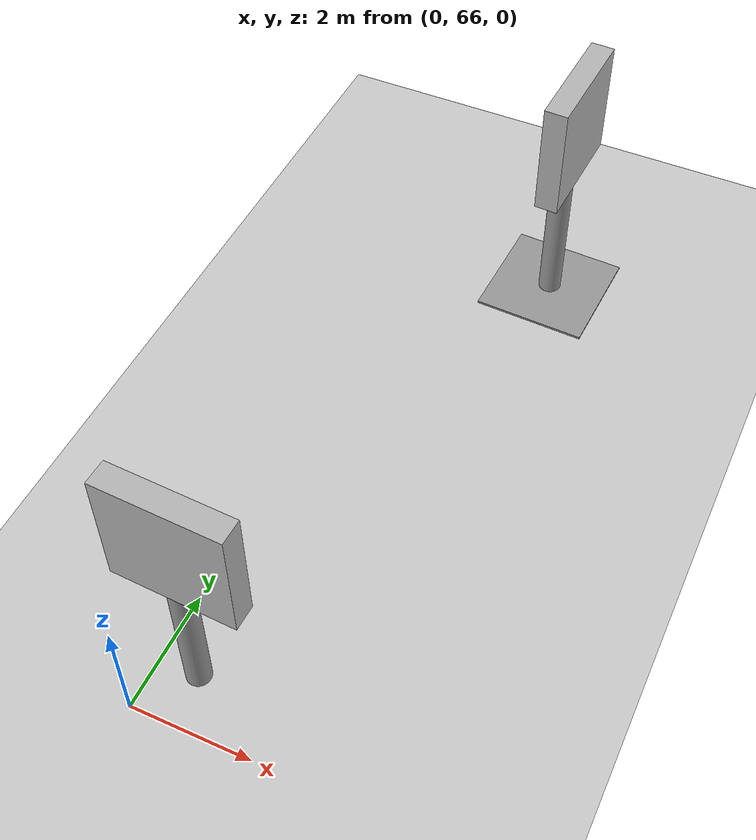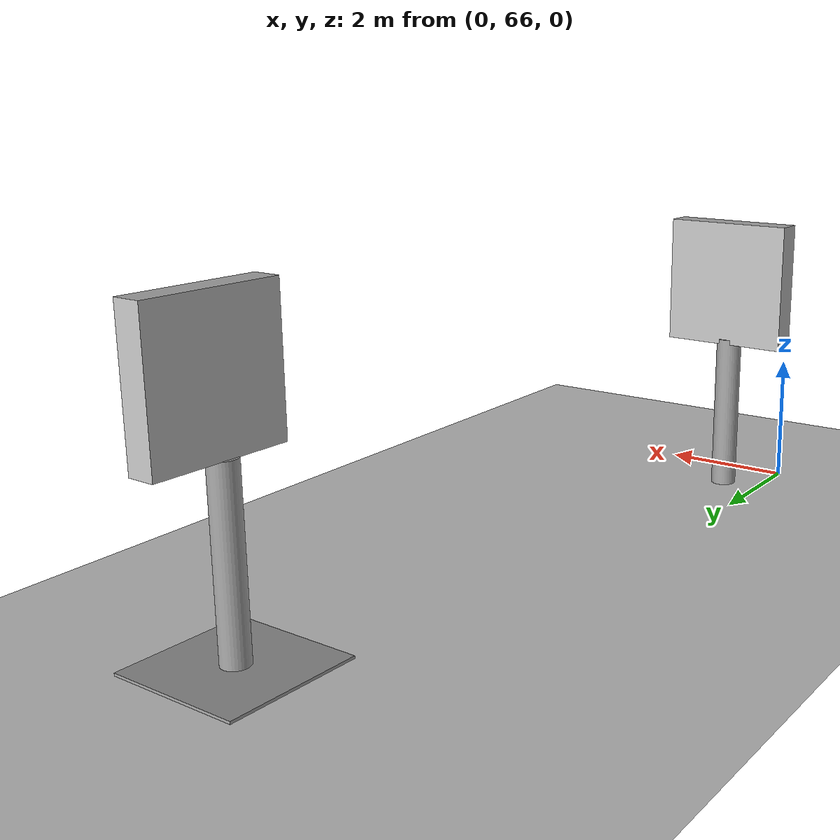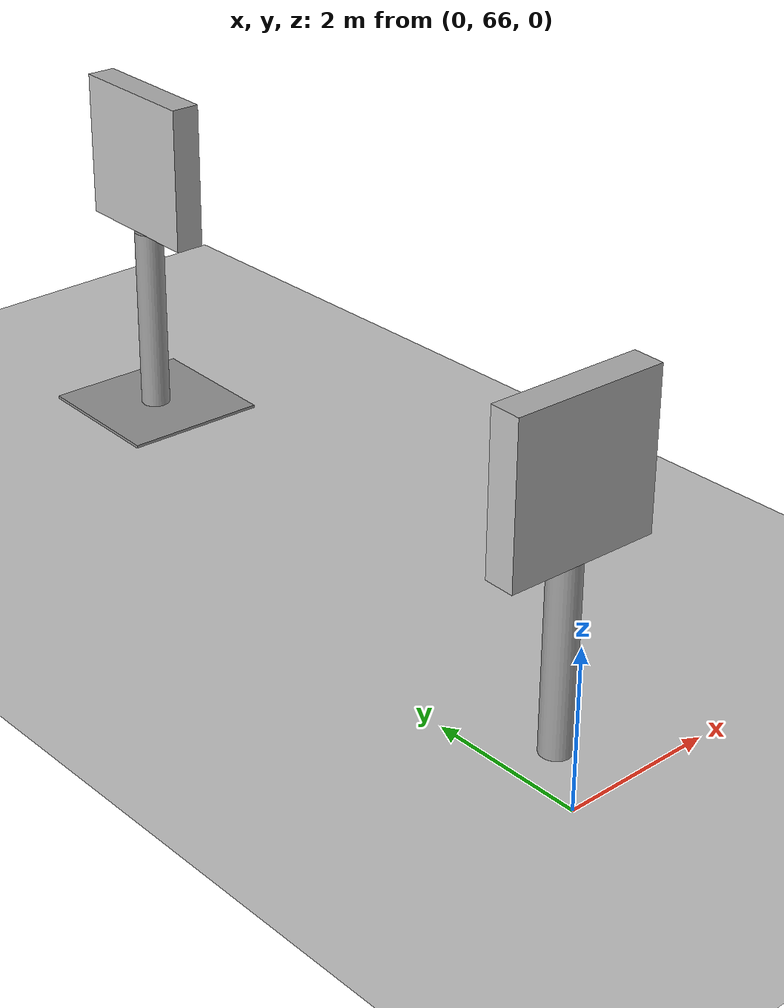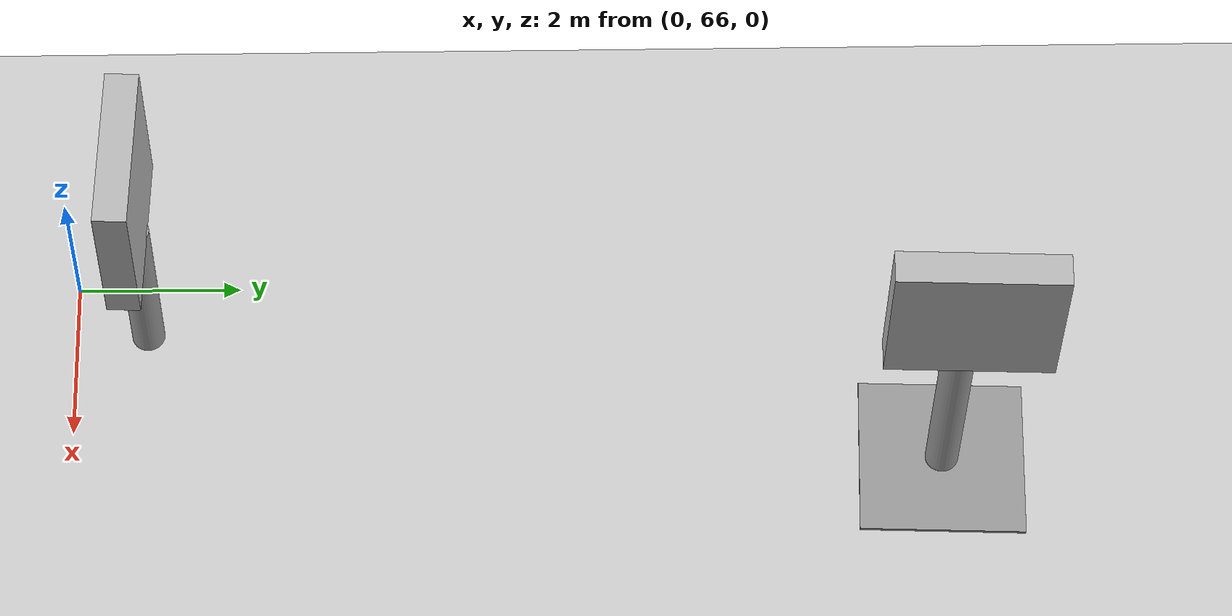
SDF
<sdf version="1.7">
 <world name="default">
  <model name="ground_plane">
   <static>1</static>
   <link name="link">
    <collision name="collision">
     <geometry><plane><normal>0 0 1</normal><size>100 100</size></plane></geometry>
     <surface><friction><ode><mu>100</mu><mu2>50</mu2></ode></friction></surface>
    </collision>
    <visual name="visual">
     <cast_shadows>0</cast_shadows>
     <geometry><plane><normal>0 0 1</normal><size>100 100</size></plane></geometry>
     <material>
      <script><uri>file://media/materials/scripts/gazebo.material</uri><name>Gazebo/Grey</name></script>
     </material>
    </visual>
   </link>
  </model>
  <model name="model_turn">
   <link name="link_0">
    <inertial>
     <mass>1</mass>
     <inertia>
      <ixx>0.166667</ixx>
      <ixy>0</ixy>
      <ixz>0</ixz>
      <iyy>0.166667</iyy>
      <iyz>0</iyz>
      <izz>0.166667</izz>
     </inertia>
    </inertial>
    <pose>-0.013991 -0.018474 -1.8118 0 -0 0</pose>
    <visual name="visual">
     <geometry>
      <mesh>
       <uri>/root/autonomous_ws/src/self_driving_car_pkg/models/sign_board_turn/meshes/sign_stand.dae</uri>
       <scale>1 1 1</scale>
      </mesh>
     </geometry>
     <material>
      <lighting>1</lighting>
      <script><uri>file://media/materials/scripts/gazebo.material</uri><name>Gazebo/Grey</name></script>
      <shader type="pixel"/>
      <emissive>0 0 0 1</emissive>
     </material>
    </visual>
    <collision name="collision">
     <geometry>
      <mesh>
       <uri>/root/autonomous_ws/src/self_driving_car_pkg/models/sign_board_turn/meshes/sign_stand.dae</uri>
       <scale>1 1 1</scale>
      </mesh>
     </geometry>
     <surface>
      <friction>
       <ode><mu>1</mu><mu2>1</mu2><fdir1>0 0 0</fdir1><slip1>0</slip1><slip2>0</slip2></ode>
       <torsional>
        <coefficient>1</coefficient>
        <patch_radius>0</patch_radius>
        <surface_radius>0</surface_radius>
        <use_patch_radius>1</use_patch_radius>
        <ode><slip>0</slip></ode>
       </torsional>
      </friction>
      <bounce><restitution_coefficient>0</restitution_coefficient><threshold>1e+06</threshold></bounce>
      <contact>
       <collide_without_contact>0</collide_without_contact>
       <collide_without_contact_bitmask>1</collide_without_contact_bitmask>
       <collide_bitmask>1</collide_bitmask>
       <ode>
        <soft_cfm>0</soft_cfm>
        <soft_erp>0.2</soft_erp>
        <kp>1e+13</kp>
        <kd>1</kd>
        <max_vel>0.01</max_vel>
        <min_depth>0</min_depth>
       </ode>
       <bullet>
        <split_impulse>1</split_impulse>
        <split_impulse_penetration_threshold>-0.01</split_impulse_penetration_threshold>
        <soft_cfm>0</soft_cfm>
        <soft_erp>0.2</soft_erp>
        <kp>1e+13</kp>
        <kd>1</kd>
       </bullet>
      </contact>
     </surface>
    </collision>
   </link>
   <link name="link_1">
    <inertial>
     <mass>1</mass>
     <inertia>
      <ixx>0.166667</ixx>
      <ixy>0</ixy>
      <ixz>0</ixz>
      <iyy>0.166667</iyy>
      <iyz>0</iyz>
      <izz>0.166667</izz>
     </inertia>
    </inertial>
    <pose>0.013991 0.018473 1.8118 0 -0 0</pose>
    <visual name="visual">
     <geometry>
      <mesh>
       <uri>/root/autonomous_ws/src/self_driving_car_pkg/models/sign_board_turn/meshes/sign_board_turn.dae</uri>
       <scale>1 1 1</scale>
      </mesh>
     </geometry>
     <material>
      <lighting>1</lighting>
      <script>
       <uri>/root/autonomous_ws/src/self_driving_car_pkg/models/sign_board_turn/materials/scripts</uri>
       <uri>/root/autonomous_ws/src/self_driving_car_pkg/models/sign_board_turn/materials/textures</uri>
       <name>model_turn/Diffuse</name>
      </script>
      <shader type="pixel"/>
      <emissive>0 0 0 1</emissive>
     </material>
    </visual>
    <collision name="collision">
     <geometry>
      <mesh>
       <uri>/root/autonomous_ws/src/self_driving_car_pkg/models/sign_board_turn/meshes/sign_board_turn.dae</uri>
       <scale>1 1 1</scale>
      </mesh>
     </geometry>
     <surface>
      <friction>
       <ode><mu>1</mu><mu2>1</mu2><fdir1>0 0 0</fdir1><slip1>0</slip1><slip2>0</slip2></ode>
       <torsional>
        <coefficient>1</coefficient>
        <patch_radius>0</patch_radius>
        <surface_radius>0</surface_radius>
        <use_patch_radius>1</use_patch_radius>
        <ode><slip>0</slip></ode>
       </torsional>
      </friction>
      <bounce><restitution_coefficient>0</restitution_coefficient><threshold>1e+06</threshold></bounce>
      <contact>
       <collide_without_contact>0</collide_without_contact>
       <collide_without_contact_bitmask>1</collide_without_contact_bitmask>
       <collide_bitmask>1</collide_bitmask>
       <ode>
        <soft_cfm>0</soft_cfm>
        <soft_erp>0.2</soft_erp>
        <kp>1e+13</kp>
        <kd>1</kd>
        <max_vel>0.01</max_vel>
        <min_depth>0</min_depth>
       </ode>
       <bullet>
        <split_impulse>1</split_impulse>
        <split_impulse_penetration_threshold>-0.01</split_impulse_penetration_threshold>
        <soft_cfm>0</soft_cfm>
        <soft_erp>0.2</soft_erp>
        <kp>1e+13</kp>
        <kd>1</kd>
       </bullet>
      </contact>
     </surface>
    </collision>
   </link>
   <joint name="link_0_JOINT_0" type="fixed">
    <parent>link_0</parent>
    <child>link_1</child>
    <physics>
     <ode><limit><cfm>0</cfm><erp>0.2</erp></limit><suspension><cfm>0</cfm><erp>0.2</erp></suspension></ode>
    </physics>
   </joint>
   <static>1</static>
   <pose>0.659705 66.8587 1.61206 0 0 -1.60803</pose>
  </model>
  <model name="model_stop">
   <link name="link_0">
    <inertial>
     <mass>1</mass>
     <inertia>
      <ixx>0.166667</ixx>
      <ixy>0</ixy>
      <ixz>0</ixz>
      <iyy>0.166667</iyy>
      <iyz>0</iyz>
      <izz>0.166667</izz>
     </inertia>
    </inertial>
    <pose>-0.029569 -0.053796 -1.84817 0 -0 0</pose>
    <visual name="visual">
     <geometry>
      <mesh>
       <uri>/root/autonomous_ws/src/self_driving_car_pkg/models/sign_board_stop/meshes/sign_stand.dae</uri>
       <scale>1 1 1</scale>
      </mesh>
     </geometry>
     <material>
      <lighting>1</lighting>
      <script><uri>file://media/materials/scripts/gazebo.material</uri><name>Gazebo/Grey</name></script>
      <shader type="pixel"/>
      <emissive>0 0 0 1</emissive>
     </material>
    </visual>
    <collision name="collision">
     <geometry>
      <mesh>
       <uri>/root/autonomous_ws/src/self_driving_car_pkg/models/sign_board_stop/meshes/sign_stand.dae</uri>
       <scale>1 1 1</scale>
      </mesh>
     </geometry>
     <surface>
      <friction>
       <ode><mu>1</mu><mu2>1</mu2><fdir1>0 0 0</fdir1><slip1>0</slip1><slip2>0</slip2></ode>
       <torsional>
        <coefficient>1</coefficient>
        <patch_radius>0</patch_radius>
        <surface_radius>0</surface_radius>
        <use_patch_radius>1</use_patch_radius>
        <ode><slip>0</slip></ode>
       </torsional>
      </friction>
      <bounce><restitution_coefficient>0</restitution_coefficient><threshold>1e+06</threshold></bounce>
      <contact>
       <collide_without_contact>0</collide_without_contact>
       <collide_without_contact_bitmask>1</collide_without_contact_bitmask>
       <collide_bitmask>1</collide_bitmask>
       <ode>
        <soft_cfm>0</soft_cfm>
        <soft_erp>0.2</soft_erp>
        <kp>1e+13</kp>
        <kd>1</kd>
        <max_vel>0.01</max_vel>
        <min_depth>0</min_depth>
       </ode>
       <bullet>
        <split_impulse>1</split_impulse>
        <split_impulse_penetration_threshold>-0.01</split_impulse_penetration_threshold>
        <soft_cfm>0</soft_cfm>
        <soft_erp>0.2</soft_erp>
        <kp>1e+13</kp>
        <kd>1</kd>
       </bullet>
      </contact>
     </surface>
    </collision>
   </link>
   <link name="link_1">
    <inertial>
     <mass>1</mass>
     <inertia>
      <ixx>0.166667</ixx>
      <ixy>0</ixy>
      <ixz>0</ixz>
      <iyy>0.166667</iyy>
      <iyz>0</iyz>
      <izz>0.166667</izz>
     </inertia>
    </inertial>
    <pose>0.02957 0.053796 1.84817 0 -0 0</pose>
    <visual name="visual">
     <geometry>
      <mesh>
       <uri>/root/autonomous_ws/src/self_driving_car_pkg/models/sign_board_stop/meshes/sign_board_stop.dae</uri>
       <scale>1 1 1</scale>
      </mesh>
     </geometry>
     <material>
      <lighting>1</lighting>
      <script>
       <uri>src/self_driving_car_pkg/models/sign_board_stop/materials/scripts</uri>
       <uri>src/self_driving_car_pkg/models/sign_board_stop/materials/textures</uri>
       <name>model_stop/Diffuse</name>
      </script>
      <shader type="pixel"/>
      <emissive>0 0 0 1</emissive>
     </material>
    </visual>
    <collision name="collision">
     <geometry>
      <mesh>
       <uri>/root/autonomous_ws/src/self_driving_car_pkg/models/sign_board_stop/meshes/sign_board_stop.dae</uri>
       <scale>1 1 1</scale>
      </mesh>
     </geometry>
     <surface>
      <friction>
       <ode><mu>1</mu><mu2>1</mu2><fdir1>0 0 0</fdir1><slip1>0</slip1><slip2>0</slip2></ode>
       <torsional>
        <coefficient>1</coefficient>
        <patch_radius>0</patch_radius>
        <surface_radius>0</surface_radius>
        <use_patch_radius>1</use_patch_radius>
        <ode><slip>0</slip></ode>
       </torsional>
      </friction>
      <bounce><restitution_coefficient>0</restitution_coefficient><threshold>1e+06</threshold></bounce>
      <contact>
       <collide_without_contact>0</collide_without_contact>
       <collide_without_contact_bitmask>1</collide_without_contact_bitmask>
       <collide_bitmask>1</collide_bitmask>
       <ode>
        <soft_cfm>0</soft_cfm>
        <soft_erp>0.2</soft_erp>
        <kp>1e+13</kp>
        <kd>1</kd>
        <max_vel>0.01</max_vel>
        <min_depth>0</min_depth>
       </ode>
       <bullet>
        <split_impulse>1</split_impulse>
        <split_impulse_penetration_threshold>-0.01</split_impulse_penetration_threshold>
        <soft_cfm>0</soft_cfm>
        <soft_erp>0.2</soft_erp>
        <kp>1e+13</kp>
        <kd>1</kd>
       </bullet>
      </contact>
     </surface>
    </collision>
   </link>
   <joint name="link_0_JOINT_0" type="fixed">
    <parent>link_0</parent>
    <child>link_1</child>
    <physics>
     <ode><limit><cfm>0</cfm><erp>0.2</erp></limit><suspension><cfm>0</cfm><erp>0.2</erp></suspension></ode>
    </physics>
   </joint>
   <static>1</static>
   <pose>2.50614 76.6255 1.77376 0 0 -0.03691</pose>
  </model>
 </world>
</sdf>
